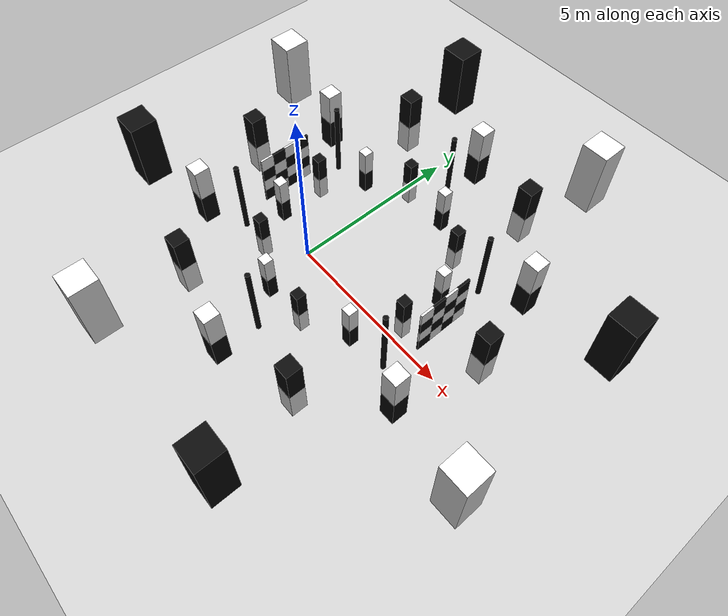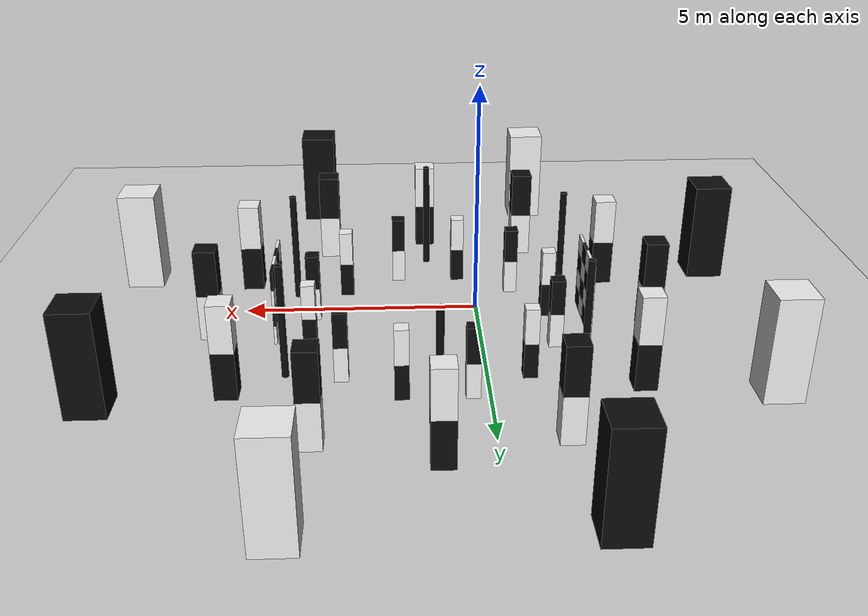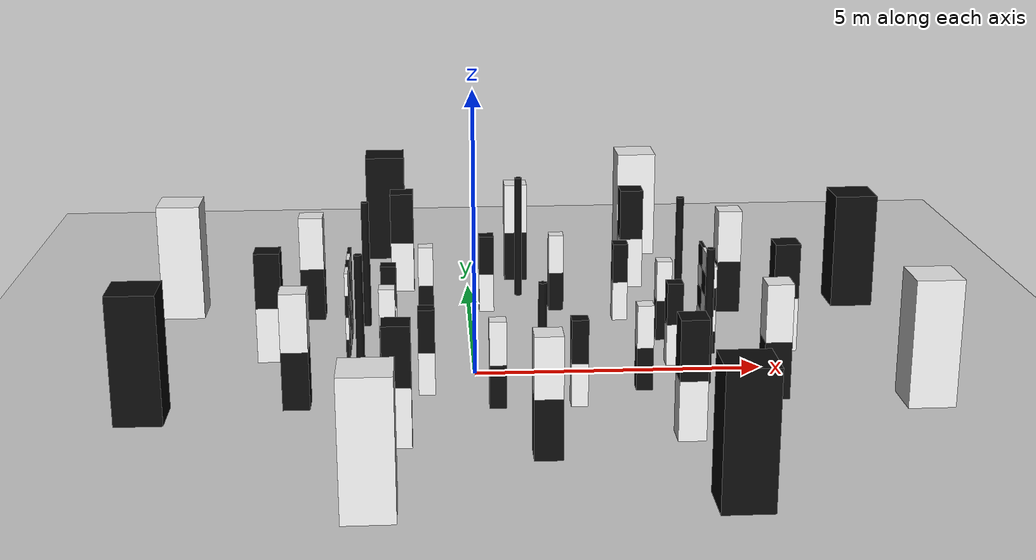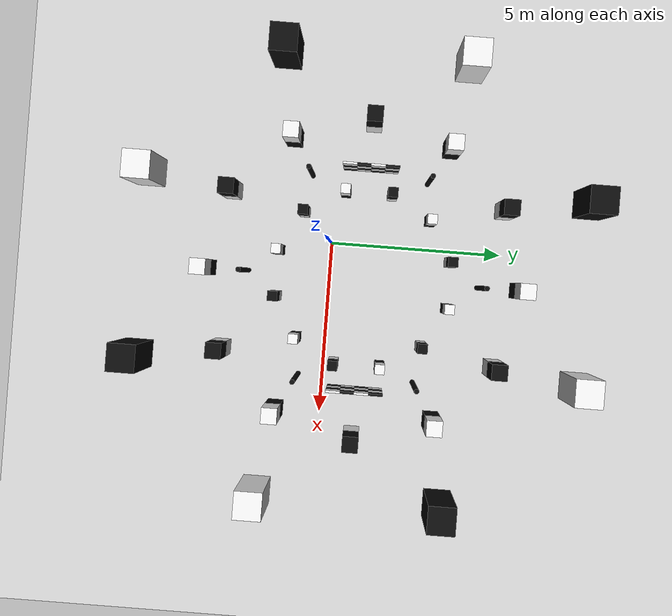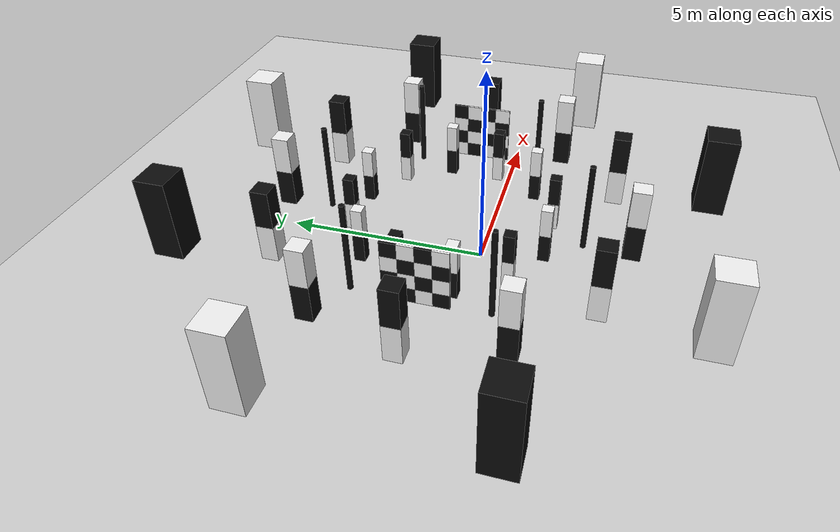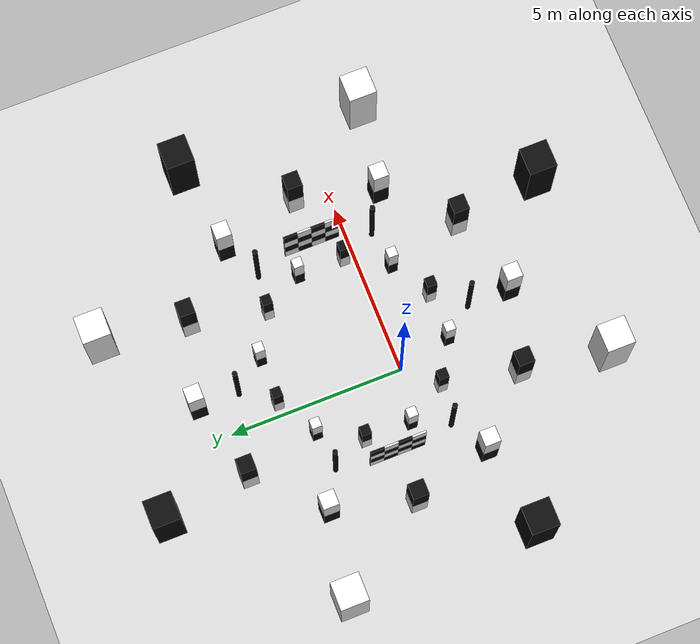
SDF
<?xml version="1.0" ?>
<sdf version="1.5">
  <world name="default">
    <!-- A global light source -->
    <include>
      <uri>model://sun</uri>
    </include>
    <!-- A ground plane -->
    <include>
      <uri>model://ground_plane</uri>
    </include>
    <include>
      <uri>model://asphalt_plane</uri>
    </include>
    <physics name='default_physics' default='0' type='ode'>
      <gravity>0 0 -9.8066</gravity>
      <ode>
        <solver>
          <type>quick</type>
          <iters>10</iters>
          <sor>1.3</sor>
          <use_dynamic_moi_rescaling>0</use_dynamic_moi_rescaling>
        </solver>
        <constraints>
          <cfm>0</cfm>
          <erp>0.2</erp>
          <contact_max_correcting_vel>100</contact_max_correcting_vel>
          <contact_surface_layer>0.001</contact_surface_layer>
        </constraints>
      </ode>
      <max_step_size>0.004</max_step_size>
      <real_time_factor>1</real_time_factor>
      <real_time_update_rate>250</real_time_update_rate>
      <magnetic_field>6.0e-6 2.3e-5 -4.2e-5</magnetic_field>
    </physics>
      <model name='wallA_00'>
      <static>true</static>
      <pose>4.200 0.400 0.400 0 0 0</pose>
      <link name='link'>
        <visual name='v'>
          <geometry><box><size>0.060 0.400 0.400</size></box></geometry>
        <material>
          <ambient>0.04 0.04 0.04 1</ambient>
          <diffuse>0.04 0.04 0.04 1</diffuse>
          <specular>0.15 0.15 0.15 1</specular>
        </material>
        </visual>
      </link>
    </model>
    <model name='wallA_01'>
      <static>true</static>
      <pose>4.200 0.800 0.400 0 0 0</pose>
      <link name='link'>
        <visual name='v'>
          <geometry><box><size>0.060 0.400 0.400</size></box></geometry>
        <material>
          <ambient>0.93 0.93 0.93 1</ambient>
          <diffuse>0.93 0.93 0.93 1</diffuse>
          <specular>0.15 0.15 0.15 1</specular>
        </material>
        </visual>
      </link>
    </model>
    <model name='wallA_02'>
      <static>true</static>
      <pose>4.200 1.200 0.400 0 0 0</pose>
      <link name='link'>
        <visual name='v'>
          <geometry><box><size>0.060 0.400 0.400</size></box></geometry>
        <material>
          <ambient>0.04 0.04 0.04 1</ambient>
          <diffuse>0.04 0.04 0.04 1</diffuse>
          <specular>0.15 0.15 0.15 1</specular>
        </material>
        </visual>
      </link>
    </model>
    <model name='wallA_03'>
      <static>true</static>
      <pose>4.200 1.600 0.400 0 0 0</pose>
      <link name='link'>
        <visual name='v'>
          <geometry><box><size>0.060 0.400 0.400</size></box></geometry>
        <material>
          <ambient>0.93 0.93 0.93 1</ambient>
          <diffuse>0.93 0.93 0.93 1</diffuse>
          <specular>0.15 0.15 0.15 1</specular>
        </material>
        </visual>
      </link>
    </model>
    <model name='wallA_10'>
      <static>true</static>
      <pose>4.200 0.400 0.800 0 0 0</pose>
      <link name='link'>
        <visual name='v'>
          <geometry><box><size>0.060 0.400 0.400</size></box></geometry>
        <material>
          <ambient>0.93 0.93 0.93 1</ambient>
          <diffuse>0.93 0.93 0.93 1</diffuse>
          <specular>0.15 0.15 0.15 1</specular>
        </material>
        </visual>
      </link>
    </model>
    <model name='wallA_11'>
      <static>true</static>
      <pose>4.200 0.800 0.800 0 0 0</pose>
      <link name='link'>
        <visual name='v'>
          <geometry><box><size>0.060 0.400 0.400</size></box></geometry>
        <material>
          <ambient>0.04 0.04 0.04 1</ambient>
          <diffuse>0.04 0.04 0.04 1</diffuse>
          <specular>0.15 0.15 0.15 1</specular>
        </material>
        </visual>
      </link>
    </model>
    <model name='wallA_12'>
      <static>true</static>
      <pose>4.200 1.200 0.800 0 0 0</pose>
      <link name='link'>
        <visual name='v'>
          <geometry><box><size>0.060 0.400 0.400</size></box></geometry>
        <material>
          <ambient>0.93 0.93 0.93 1</ambient>
          <diffuse>0.93 0.93 0.93 1</diffuse>
          <specular>0.15 0.15 0.15 1</specular>
        </material>
        </visual>
      </link>
    </model>
    <model name='wallA_13'>
      <static>true</static>
      <pose>4.200 1.600 0.800 0 0 0</pose>
      <link name='link'>
        <visual name='v'>
          <geometry><box><size>0.060 0.400 0.400</size></box></geometry>
        <material>
          <ambient>0.04 0.04 0.04 1</ambient>
          <diffuse>0.04 0.04 0.04 1</diffuse>
          <specular>0.15 0.15 0.15 1</specular>
        </material>
        </visual>
      </link>
    </model>
    <model name='wallA_20'>
      <static>true</static>
      <pose>4.200 0.400 1.200 0 0 0</pose>
      <link name='link'>
        <visual name='v'>
          <geometry><box><size>0.060 0.400 0.400</size></box></geometry>
        <material>
          <ambient>0.04 0.04 0.04 1</ambient>
          <diffuse>0.04 0.04 0.04 1</diffuse>
          <specular>0.15 0.15 0.15 1</specular>
        </material>
        </visual>
      </link>
    </model>
    <model name='wallA_21'>
      <static>true</static>
      <pose>4.200 0.800 1.200 0 0 0</pose>
      <link name='link'>
        <visual name='v'>
          <geometry><box><size>0.060 0.400 0.400</size></box></geometry>
        <material>
          <ambient>0.93 0.93 0.93 1</ambient>
          <diffuse>0.93 0.93 0.93 1</diffuse>
          <specular>0.15 0.15 0.15 1</specular>
        </material>
        </visual>
      </link>
    </model>
    <model name='wallA_22'>
      <static>true</static>
      <pose>4.200 1.200 1.200 0 0 0</pose>
      <link name='link'>
        <visual name='v'>
          <geometry><box><size>0.060 0.400 0.400</size></box></geometry>
        <material>
          <ambient>0.04 0.04 0.04 1</ambient>
          <diffuse>0.04 0.04 0.04 1</diffuse>
          <specular>0.15 0.15 0.15 1</specular>
        </material>
        </visual>
      </link>
    </model>
    <model name='wallA_23'>
      <static>true</static>
      <pose>4.200 1.600 1.200 0 0 0</pose>
      <link name='link'>
        <visual name='v'>
          <geometry><box><size>0.060 0.400 0.400</size></box></geometry>
        <material>
          <ambient>0.93 0.93 0.93 1</ambient>
          <diffuse>0.93 0.93 0.93 1</diffuse>
          <specular>0.15 0.15 0.15 1</specular>
        </material>
        </visual>
      </link>
    </model>
    <model name='wallA_30'>
      <static>true</static>
      <pose>4.200 0.400 1.600 0 0 0</pose>
      <link name='link'>
        <visual name='v'>
          <geometry><box><size>0.060 0.400 0.400</size></box></geometry>
        <material>
          <ambient>0.93 0.93 0.93 1</ambient>
          <diffuse>0.93 0.93 0.93 1</diffuse>
          <specular>0.15 0.15 0.15 1</specular>
        </material>
        </visual>
      </link>
    </model>
    <model name='wallA_31'>
      <static>true</static>
      <pose>4.200 0.800 1.600 0 0 0</pose>
      <link name='link'>
        <visual name='v'>
          <geometry><box><size>0.060 0.400 0.400</size></box></geometry>
        <material>
          <ambient>0.04 0.04 0.04 1</ambient>
          <diffuse>0.04 0.04 0.04 1</diffuse>
          <specular>0.15 0.15 0.15 1</specular>
        </material>
        </visual>
      </link>
    </model>
    <model name='wallA_32'>
      <static>true</static>
      <pose>4.200 1.200 1.600 0 0 0</pose>
      <link name='link'>
        <visual name='v'>
          <geometry><box><size>0.060 0.400 0.400</size></box></geometry>
        <material>
          <ambient>0.93 0.93 0.93 1</ambient>
          <diffuse>0.93 0.93 0.93 1</diffuse>
          <specular>0.15 0.15 0.15 1</specular>
        </material>
        </visual>
      </link>
    </model>
    <model name='wallA_33'>
      <static>true</static>
      <pose>4.200 1.600 1.600 0 0 0</pose>
      <link name='link'>
        <visual name='v'>
          <geometry><box><size>0.060 0.400 0.400</size></box></geometry>
        <material>
          <ambient>0.04 0.04 0.04 1</ambient>
          <diffuse>0.04 0.04 0.04 1</diffuse>
          <specular>0.15 0.15 0.15 1</specular>
        </material>
        </visual>
      </link>
    </model>
    <model name='wallB_00'>
      <static>true</static>
      <pose>-2.200 0.400 0.400 0 0 0</pose>
      <link name='link'>
        <visual name='v'>
          <geometry><box><size>0.060 0.400 0.400</size></box></geometry>
        <material>
          <ambient>0.04 0.04 0.04 1</ambient>
          <diffuse>0.04 0.04 0.04 1</diffuse>
          <specular>0.15 0.15 0.15 1</specular>
        </material>
        </visual>
      </link>
    </model>
    <model name='wallB_01'>
      <static>true</static>
      <pose>-2.200 0.800 0.400 0 0 0</pose>
      <link name='link'>
        <visual name='v'>
          <geometry><box><size>0.060 0.400 0.400</size></box></geometry>
        <material>
          <ambient>0.93 0.93 0.93 1</ambient>
          <diffuse>0.93 0.93 0.93 1</diffuse>
          <specular>0.15 0.15 0.15 1</specular>
        </material>
        </visual>
      </link>
    </model>
    <model name='wallB_02'>
      <static>true</static>
      <pose>-2.200 1.200 0.400 0 0 0</pose>
      <link name='link'>
        <visual name='v'>
          <geometry><box><size>0.060 0.400 0.400</size></box></geometry>
        <material>
          <ambient>0.04 0.04 0.04 1</ambient>
          <diffuse>0.04 0.04 0.04 1</diffuse>
          <specular>0.15 0.15 0.15 1</specular>
        </material>
        </visual>
      </link>
    </model>
    <model name='wallB_03'>
      <static>true</static>
      <pose>-2.200 1.600 0.400 0 0 0</pose>
      <link name='link'>
        <visual name='v'>
          <geometry><box><size>0.060 0.400 0.400</size></box></geometry>
        <material>
          <ambient>0.93 0.93 0.93 1</ambient>
          <diffuse>0.93 0.93 0.93 1</diffuse>
          <specular>0.15 0.15 0.15 1</specular>
        </material>
        </visual>
      </link>
    </model>
    <model name='wallB_10'>
      <static>true</static>
      <pose>-2.200 0.400 0.800 0 0 0</pose>
      <link name='link'>
        <visual name='v'>
          <geometry><box><size>0.060 0.400 0.400</size></box></geometry>
        <material>
          <ambient>0.93 0.93 0.93 1</ambient>
          <diffuse>0.93 0.93 0.93 1</diffuse>
          <specular>0.15 0.15 0.15 1</specular>
        </material>
        </visual>
      </link>
    </model>
    <model name='wallB_11'>
      <static>true</static>
      <pose>-2.200 0.800 0.800 0 0 0</pose>
      <link name='link'>
        <visual name='v'>
          <geometry><box><size>0.060 0.400 0.400</size></box></geometry>
        <material>
          <ambient>0.04 0.04 0.04 1</ambient>
          <diffuse>0.04 0.04 0.04 1</diffuse>
          <specular>0.15 0.15 0.15 1</specular>
        </material>
        </visual>
      </link>
    </model>
    <model name='wallB_12'>
      <static>true</static>
      <pose>-2.200 1.200 0.800 0 0 0</pose>
      <link name='link'>
        <visual name='v'>
          <geometry><box><size>0.060 0.400 0.400</size></box></geometry>
        <material>
          <ambient>0.93 0.93 0.93 1</ambient>
          <diffuse>0.93 0.93 0.93 1</diffuse>
          <specular>0.15 0.15 0.15 1</specular>
        </material>
        </visual>
      </link>
    </model>
    <model name='wallB_13'>
      <static>true</static>
      <pose>-2.200 1.600 0.800 0 0 0</pose>
      <link name='link'>
        <visual name='v'>
          <geometry><box><size>0.060 0.400 0.400</size></box></geometry>
        <material>
          <ambient>0.04 0.04 0.04 1</ambient>
          <diffuse>0.04 0.04 0.04 1</diffuse>
          <specular>0.15 0.15 0.15 1</specular>
        </material>
        </visual>
      </link>
    </model>
    <model name='wallB_20'>
      <static>true</static>
      <pose>-2.200 0.400 1.200 0 0 0</pose>
      <link name='link'>
        <visual name='v'>
          <geometry><box><size>0.060 0.400 0.400</size></box></geometry>
        <material>
          <ambient>0.04 0.04 0.04 1</ambient>
          <diffuse>0.04 0.04 0.04 1</diffuse>
          <specular>0.15 0.15 0.15 1</specular>
        </material>
        </visual>
      </link>
    </model>
    <model name='wallB_21'>
      <static>true</static>
      <pose>-2.200 0.800 1.200 0 0 0</pose>
      <link name='link'>
        <visual name='v'>
          <geometry><box><size>0.060 0.400 0.400</size></box></geometry>
        <material>
          <ambient>0.93 0.93 0.93 1</ambient>
          <diffuse>0.93 0.93 0.93 1</diffuse>
          <specular>0.15 0.15 0.15 1</specular>
        </material>
        </visual>
      </link>
    </model>
    <model name='wallB_22'>
      <static>true</static>
      <pose>-2.200 1.200 1.200 0 0 0</pose>
      <link name='link'>
        <visual name='v'>
          <geometry><box><size>0.060 0.400 0.400</size></box></geometry>
        <material>
          <ambient>0.04 0.04 0.04 1</ambient>
          <diffuse>0.04 0.04 0.04 1</diffuse>
          <specular>0.15 0.15 0.15 1</specular>
        </material>
        </visual>
      </link>
    </model>
    <model name='wallB_23'>
      <static>true</static>
      <pose>-2.200 1.600 1.200 0 0 0</pose>
      <link name='link'>
        <visual name='v'>
          <geometry><box><size>0.060 0.400 0.400</size></box></geometry>
        <material>
          <ambient>0.93 0.93 0.93 1</ambient>
          <diffuse>0.93 0.93 0.93 1</diffuse>
          <specular>0.15 0.15 0.15 1</specular>
        </material>
        </visual>
      </link>
    </model>
    <model name='wallB_30'>
      <static>true</static>
      <pose>-2.200 0.400 1.600 0 0 0</pose>
      <link name='link'>
        <visual name='v'>
          <geometry><box><size>0.060 0.400 0.400</size></box></geometry>
        <material>
          <ambient>0.93 0.93 0.93 1</ambient>
          <diffuse>0.93 0.93 0.93 1</diffuse>
          <specular>0.15 0.15 0.15 1</specular>
        </material>
        </visual>
      </link>
    </model>
    <model name='wallB_31'>
      <static>true</static>
      <pose>-2.200 0.800 1.600 0 0 0</pose>
      <link name='link'>
        <visual name='v'>
          <geometry><box><size>0.060 0.400 0.400</size></box></geometry>
        <material>
          <ambient>0.04 0.04 0.04 1</ambient>
          <diffuse>0.04 0.04 0.04 1</diffuse>
          <specular>0.15 0.15 0.15 1</specular>
        </material>
        </visual>
      </link>
    </model>
    <model name='wallB_32'>
      <static>true</static>
      <pose>-2.200 1.200 1.600 0 0 0</pose>
      <link name='link'>
        <visual name='v'>
          <geometry><box><size>0.060 0.400 0.400</size></box></geometry>
        <material>
          <ambient>0.93 0.93 0.93 1</ambient>
          <diffuse>0.93 0.93 0.93 1</diffuse>
          <specular>0.15 0.15 0.15 1</specular>
        </material>
        </visual>
      </link>
    </model>
    <model name='wallB_33'>
      <static>true</static>
      <pose>-2.200 1.600 1.600 0 0 0</pose>
      <link name='link'>
        <visual name='v'>
          <geometry><box><size>0.060 0.400 0.400</size></box></geometry>
        <material>
          <ambient>0.04 0.04 0.04 1</ambient>
          <diffuse>0.04 0.04 0.04 1</diffuse>
          <specular>0.15 0.15 0.15 1</specular>
        </material>
        </visual>
      </link>
    </model>
    <model name='r1_0_lo'>
      <static>true</static>
      <pose>3.511 1.673 0.375 0 0 0</pose>
      <link name='link'>
        <visual name='v'>
          <geometry><box><size>0.280 0.280 0.750</size></box></geometry>
        <material>
          <ambient>0.04 0.04 0.04 1</ambient>
          <diffuse>0.04 0.04 0.04 1</diffuse>
          <specular>0.15 0.15 0.15 1</specular>
        </material>
        </visual>
      </link>
    </model>
    <model name='r1_0_hi'>
      <static>true</static>
      <pose>3.511 1.673 1.125 0 0 0</pose>
      <link name='link'>
        <visual name='v'>
          <geometry><box><size>0.280 0.280 0.750</size></box></geometry>
        <material>
          <ambient>0.93 0.93 0.93 1</ambient>
          <diffuse>0.93 0.93 0.93 1</diffuse>
          <specular>0.15 0.15 0.15 1</specular>
        </material>
        </visual>
      </link>
    </model>
    <model name='r1_1_lo'>
      <static>true</static>
      <pose>2.838 2.838 0.375 0 0 0</pose>
      <link name='link'>
        <visual name='v'>
          <geometry><box><size>0.280 0.280 0.750</size></box></geometry>
        <material>
          <ambient>0.93 0.93 0.93 1</ambient>
          <diffuse>0.93 0.93 0.93 1</diffuse>
          <specular>0.15 0.15 0.15 1</specular>
        </material>
        </visual>
      </link>
    </model>
    <model name='r1_1_hi'>
      <static>true</static>
      <pose>2.838 2.838 1.125 0 0 0</pose>
      <link name='link'>
        <visual name='v'>
          <geometry><box><size>0.280 0.280 0.750</size></box></geometry>
        <material>
          <ambient>0.04 0.04 0.04 1</ambient>
          <diffuse>0.04 0.04 0.04 1</diffuse>
          <specular>0.15 0.15 0.15 1</specular>
        </material>
        </visual>
      </link>
    </model>
    <model name='r1_2_lo'>
      <static>true</static>
      <pose>1.673 3.511 0.375 0 0 0</pose>
      <link name='link'>
        <visual name='v'>
          <geometry><box><size>0.280 0.280 0.750</size></box></geometry>
        <material>
          <ambient>0.04 0.04 0.04 1</ambient>
          <diffuse>0.04 0.04 0.04 1</diffuse>
          <specular>0.15 0.15 0.15 1</specular>
        </material>
        </visual>
      </link>
    </model>
    <model name='r1_2_hi'>
      <static>true</static>
      <pose>1.673 3.511 1.125 0 0 0</pose>
      <link name='link'>
        <visual name='v'>
          <geometry><box><size>0.280 0.280 0.750</size></box></geometry>
        <material>
          <ambient>0.93 0.93 0.93 1</ambient>
          <diffuse>0.93 0.93 0.93 1</diffuse>
          <specular>0.15 0.15 0.15 1</specular>
        </material>
        </visual>
      </link>
    </model>
    <model name='r1_3_lo'>
      <static>true</static>
      <pose>0.327 3.511 0.375 0 0 0</pose>
      <link name='link'>
        <visual name='v'>
          <geometry><box><size>0.280 0.280 0.750</size></box></geometry>
        <material>
          <ambient>0.93 0.93 0.93 1</ambient>
          <diffuse>0.93 0.93 0.93 1</diffuse>
          <specular>0.15 0.15 0.15 1</specular>
        </material>
        </visual>
      </link>
    </model>
    <model name='r1_3_hi'>
      <static>true</static>
      <pose>0.327 3.511 1.125 0 0 0</pose>
      <link name='link'>
        <visual name='v'>
          <geometry><box><size>0.280 0.280 0.750</size></box></geometry>
        <material>
          <ambient>0.04 0.04 0.04 1</ambient>
          <diffuse>0.04 0.04 0.04 1</diffuse>
          <specular>0.15 0.15 0.15 1</specular>
        </material>
        </visual>
      </link>
    </model>
    <model name='r1_4_lo'>
      <static>true</static>
      <pose>-0.838 2.838 0.375 0 0 0</pose>
      <link name='link'>
        <visual name='v'>
          <geometry><box><size>0.280 0.280 0.750</size></box></geometry>
        <material>
          <ambient>0.04 0.04 0.04 1</ambient>
          <diffuse>0.04 0.04 0.04 1</diffuse>
          <specular>0.15 0.15 0.15 1</specular>
        </material>
        </visual>
      </link>
    </model>
    <model name='r1_4_hi'>
      <static>true</static>
      <pose>-0.838 2.838 1.125 0 0 0</pose>
      <link name='link'>
        <visual name='v'>
          <geometry><box><size>0.280 0.280 0.750</size></box></geometry>
        <material>
          <ambient>0.93 0.93 0.93 1</ambient>
          <diffuse>0.93 0.93 0.93 1</diffuse>
          <specular>0.15 0.15 0.15 1</specular>
        </material>
        </visual>
      </link>
    </model>
    <model name='r1_5_lo'>
      <static>true</static>
      <pose>-1.511 1.673 0.375 0 0 0</pose>
      <link name='link'>
        <visual name='v'>
          <geometry><box><size>0.280 0.280 0.750</size></box></geometry>
        <material>
          <ambient>0.93 0.93 0.93 1</ambient>
          <diffuse>0.93 0.93 0.93 1</diffuse>
          <specular>0.15 0.15 0.15 1</specular>
        </material>
        </visual>
      </link>
    </model>
    <model name='r1_5_hi'>
      <static>true</static>
      <pose>-1.511 1.673 1.125 0 0 0</pose>
      <link name='link'>
        <visual name='v'>
          <geometry><box><size>0.280 0.280 0.750</size></box></geometry>
        <material>
          <ambient>0.04 0.04 0.04 1</ambient>
          <diffuse>0.04 0.04 0.04 1</diffuse>
          <specular>0.15 0.15 0.15 1</specular>
        </material>
        </visual>
      </link>
    </model>
    <model name='r1_6_lo'>
      <static>true</static>
      <pose>-1.511 0.327 0.375 0 0 0</pose>
      <link name='link'>
        <visual name='v'>
          <geometry><box><size>0.280 0.280 0.750</size></box></geometry>
        <material>
          <ambient>0.04 0.04 0.04 1</ambient>
          <diffuse>0.04 0.04 0.04 1</diffuse>
          <specular>0.15 0.15 0.15 1</specular>
        </material>
        </visual>
      </link>
    </model>
    <model name='r1_6_hi'>
      <static>true</static>
      <pose>-1.511 0.327 1.125 0 0 0</pose>
      <link name='link'>
        <visual name='v'>
          <geometry><box><size>0.280 0.280 0.750</size></box></geometry>
        <material>
          <ambient>0.93 0.93 0.93 1</ambient>
          <diffuse>0.93 0.93 0.93 1</diffuse>
          <specular>0.15 0.15 0.15 1</specular>
        </material>
        </visual>
      </link>
    </model>
    <model name='r1_7_lo'>
      <static>true</static>
      <pose>-0.838 -0.838 0.375 0 0 0</pose>
      <link name='link'>
        <visual name='v'>
          <geometry><box><size>0.280 0.280 0.750</size></box></geometry>
        <material>
          <ambient>0.93 0.93 0.93 1</ambient>
          <diffuse>0.93 0.93 0.93 1</diffuse>
          <specular>0.15 0.15 0.15 1</specular>
        </material>
        </visual>
      </link>
    </model>
    <model name='r1_7_hi'>
      <static>true</static>
      <pose>-0.838 -0.838 1.125 0 0 0</pose>
      <link name='link'>
        <visual name='v'>
          <geometry><box><size>0.280 0.280 0.750</size></box></geometry>
        <material>
          <ambient>0.04 0.04 0.04 1</ambient>
          <diffuse>0.04 0.04 0.04 1</diffuse>
          <specular>0.15 0.15 0.15 1</specular>
        </material>
        </visual>
      </link>
    </model>
    <model name='r1_8_lo'>
      <static>true</static>
      <pose>0.327 -1.511 0.375 0 0 0</pose>
      <link name='link'>
        <visual name='v'>
          <geometry><box><size>0.280 0.280 0.750</size></box></geometry>
        <material>
          <ambient>0.04 0.04 0.04 1</ambient>
          <diffuse>0.04 0.04 0.04 1</diffuse>
          <specular>0.15 0.15 0.15 1</specular>
        </material>
        </visual>
      </link>
    </model>
    <model name='r1_8_hi'>
      <static>true</static>
      <pose>0.327 -1.511 1.125 0 0 0</pose>
      <link name='link'>
        <visual name='v'>
          <geometry><box><size>0.280 0.280 0.750</size></box></geometry>
        <material>
          <ambient>0.93 0.93 0.93 1</ambient>
          <diffuse>0.93 0.93 0.93 1</diffuse>
          <specular>0.15 0.15 0.15 1</specular>
        </material>
        </visual>
      </link>
    </model>
    <model name='r1_9_lo'>
      <static>true</static>
      <pose>1.673 -1.511 0.375 0 0 0</pose>
      <link name='link'>
        <visual name='v'>
          <geometry><box><size>0.280 0.280 0.750</size></box></geometry>
        <material>
          <ambient>0.93 0.93 0.93 1</ambient>
          <diffuse>0.93 0.93 0.93 1</diffuse>
          <specular>0.15 0.15 0.15 1</specular>
        </material>
        </visual>
      </link>
    </model>
    <model name='r1_9_hi'>
      <static>true</static>
      <pose>1.673 -1.511 1.125 0 0 0</pose>
      <link name='link'>
        <visual name='v'>
          <geometry><box><size>0.280 0.280 0.750</size></box></geometry>
        <material>
          <ambient>0.04 0.04 0.04 1</ambient>
          <diffuse>0.04 0.04 0.04 1</diffuse>
          <specular>0.15 0.15 0.15 1</specular>
        </material>
        </visual>
      </link>
    </model>
    <model name='r1_10_lo'>
      <static>true</static>
      <pose>2.838 -0.838 0.375 0 0 0</pose>
      <link name='link'>
        <visual name='v'>
          <geometry><box><size>0.280 0.280 0.750</size></box></geometry>
        <material>
          <ambient>0.04 0.04 0.04 1</ambient>
          <diffuse>0.04 0.04 0.04 1</diffuse>
          <specular>0.15 0.15 0.15 1</specular>
        </material>
        </visual>
      </link>
    </model>
    <model name='r1_10_hi'>
      <static>true</static>
      <pose>2.838 -0.838 1.125 0 0 0</pose>
      <link name='link'>
        <visual name='v'>
          <geometry><box><size>0.280 0.280 0.750</size></box></geometry>
        <material>
          <ambient>0.93 0.93 0.93 1</ambient>
          <diffuse>0.93 0.93 0.93 1</diffuse>
          <specular>0.15 0.15 0.15 1</specular>
        </material>
        </visual>
      </link>
    </model>
    <model name='r1_11_lo'>
      <static>true</static>
      <pose>3.511 0.327 0.375 0 0 0</pose>
      <link name='link'>
        <visual name='v'>
          <geometry><box><size>0.280 0.280 0.750</size></box></geometry>
        <material>
          <ambient>0.93 0.93 0.93 1</ambient>
          <diffuse>0.93 0.93 0.93 1</diffuse>
          <specular>0.15 0.15 0.15 1</specular>
        </material>
        </visual>
      </link>
    </model>
    <model name='r1_11_hi'>
      <static>true</static>
      <pose>3.511 0.327 1.125 0 0 0</pose>
      <link name='link'>
        <visual name='v'>
          <geometry><box><size>0.280 0.280 0.750</size></box></geometry>
        <material>
          <ambient>0.04 0.04 0.04 1</ambient>
          <diffuse>0.04 0.04 0.04 1</diffuse>
          <specular>0.15 0.15 0.15 1</specular>
        </material>
        </visual>
      </link>
    </model>
    <model name='r2_0_lo'>
      <static>true</static>
      <pose>5.600 1.000 0.500 0 0 0</pose>
      <link name='link'>
        <visual name='v'>
          <geometry><box><size>0.450 0.450 1.000</size></box></geometry>
        <material>
          <ambient>0.93 0.93 0.93 1</ambient>
          <diffuse>0.93 0.93 0.93 1</diffuse>
          <specular>0.15 0.15 0.15 1</specular>
        </material>
        </visual>
      </link>
    </model>
    <model name='r2_0_hi'>
      <static>true</static>
      <pose>5.600 1.000 1.500 0 0 0</pose>
      <link name='link'>
        <visual name='v'>
          <geometry><box><size>0.450 0.450 1.000</size></box></geometry>
        <material>
          <ambient>0.04 0.04 0.04 1</ambient>
          <diffuse>0.04 0.04 0.04 1</diffuse>
          <specular>0.15 0.15 0.15 1</specular>
        </material>
        </visual>
      </link>
    </model>
    <model name='r2_1_lo'>
      <static>true</static>
      <pose>4.984 3.300 0.500 0 0 0</pose>
      <link name='link'>
        <visual name='v'>
          <geometry><box><size>0.450 0.450 1.000</size></box></geometry>
        <material>
          <ambient>0.04 0.04 0.04 1</ambient>
          <diffuse>0.04 0.04 0.04 1</diffuse>
          <specular>0.15 0.15 0.15 1</specular>
        </material>
        </visual>
      </link>
    </model>
    <model name='r2_1_hi'>
      <static>true</static>
      <pose>4.984 3.300 1.500 0 0 0</pose>
      <link name='link'>
        <visual name='v'>
          <geometry><box><size>0.450 0.450 1.000</size></box></geometry>
        <material>
          <ambient>0.93 0.93 0.93 1</ambient>
          <diffuse>0.93 0.93 0.93 1</diffuse>
          <specular>0.15 0.15 0.15 1</specular>
        </material>
        </visual>
      </link>
    </model>
    <model name='r2_2_lo'>
      <static>true</static>
      <pose>3.300 4.984 0.500 0 0 0</pose>
      <link name='link'>
        <visual name='v'>
          <geometry><box><size>0.450 0.450 1.000</size></box></geometry>
        <material>
          <ambient>0.93 0.93 0.93 1</ambient>
          <diffuse>0.93 0.93 0.93 1</diffuse>
          <specular>0.15 0.15 0.15 1</specular>
        </material>
        </visual>
      </link>
    </model>
    <model name='r2_2_hi'>
      <static>true</static>
      <pose>3.300 4.984 1.500 0 0 0</pose>
      <link name='link'>
        <visual name='v'>
          <geometry><box><size>0.450 0.450 1.000</size></box></geometry>
        <material>
          <ambient>0.04 0.04 0.04 1</ambient>
          <diffuse>0.04 0.04 0.04 1</diffuse>
          <specular>0.15 0.15 0.15 1</specular>
        </material>
        </visual>
      </link>
    </model>
    <model name='r2_3_lo'>
      <static>true</static>
      <pose>1.000 5.600 0.500 0 0 0</pose>
      <link name='link'>
        <visual name='v'>
          <geometry><box><size>0.450 0.450 1.000</size></box></geometry>
        <material>
          <ambient>0.04 0.04 0.04 1</ambient>
          <diffuse>0.04 0.04 0.04 1</diffuse>
          <specular>0.15 0.15 0.15 1</specular>
        </material>
        </visual>
      </link>
    </model>
    <model name='r2_3_hi'>
      <static>true</static>
      <pose>1.000 5.600 1.500 0 0 0</pose>
      <link name='link'>
        <visual name='v'>
          <geometry><box><size>0.450 0.450 1.000</size></box></geometry>
        <material>
          <ambient>0.93 0.93 0.93 1</ambient>
          <diffuse>0.93 0.93 0.93 1</diffuse>
          <specular>0.15 0.15 0.15 1</specular>
        </material>
        </visual>
      </link>
    </model>
    <model name='r2_4_lo'>
      <static>true</static>
      <pose>-1.300 4.984 0.500 0 0 0</pose>
      <link name='link'>
        <visual name='v'>
          <geometry><box><size>0.450 0.450 1.000</size></box></geometry>
        <material>
          <ambient>0.93 0.93 0.93 1</ambient>
          <diffuse>0.93 0.93 0.93 1</diffuse>
          <specular>0.15 0.15 0.15 1</specular>
        </material>
        </visual>
      </link>
    </model>
    <model name='r2_4_hi'>
      <static>true</static>
      <pose>-1.300 4.984 1.500 0 0 0</pose>
      <link name='link'>
        <visual name='v'>
          <geometry><box><size>0.450 0.450 1.000</size></box></geometry>
        <material>
          <ambient>0.04 0.04 0.04 1</ambient>
          <diffuse>0.04 0.04 0.04 1</diffuse>
          <specular>0.15 0.15 0.15 1</specular>
        </material>
        </visual>
      </link>
    </model>
    <model name='r2_5_lo'>
      <static>true</static>
      <pose>-2.984 3.300 0.500 0 0 0</pose>
      <link name='link'>
        <visual name='v'>
          <geometry><box><size>0.450 0.450 1.000</size></box></geometry>
        <material>
          <ambient>0.04 0.04 0.04 1</ambient>
          <diffuse>0.04 0.04 0.04 1</diffuse>
          <specular>0.15 0.15 0.15 1</specular>
        </material>
        </visual>
      </link>
    </model>
    <model name='r2_5_hi'>
      <static>true</static>
      <pose>-2.984 3.300 1.500 0 0 0</pose>
      <link name='link'>
        <visual name='v'>
          <geometry><box><size>0.450 0.450 1.000</size></box></geometry>
        <material>
          <ambient>0.93 0.93 0.93 1</ambient>
          <diffuse>0.93 0.93 0.93 1</diffuse>
          <specular>0.15 0.15 0.15 1</specular>
        </material>
        </visual>
      </link>
    </model>
    <model name='r2_6_lo'>
      <static>true</static>
      <pose>-3.600 1.000 0.500 0 0 0</pose>
      <link name='link'>
        <visual name='v'>
          <geometry><box><size>0.450 0.450 1.000</size></box></geometry>
        <material>
          <ambient>0.93 0.93 0.93 1</ambient>
          <diffuse>0.93 0.93 0.93 1</diffuse>
          <specular>0.15 0.15 0.15 1</specular>
        </material>
        </visual>
      </link>
    </model>
    <model name='r2_6_hi'>
      <static>true</static>
      <pose>-3.600 1.000 1.500 0 0 0</pose>
      <link name='link'>
        <visual name='v'>
          <geometry><box><size>0.450 0.450 1.000</size></box></geometry>
        <material>
          <ambient>0.04 0.04 0.04 1</ambient>
          <diffuse>0.04 0.04 0.04 1</diffuse>
          <specular>0.15 0.15 0.15 1</specular>
        </material>
        </visual>
      </link>
    </model>
    <model name='r2_7_lo'>
      <static>true</static>
      <pose>-2.984 -1.300 0.500 0 0 0</pose>
      <link name='link'>
        <visual name='v'>
          <geometry><box><size>0.450 0.450 1.000</size></box></geometry>
        <material>
          <ambient>0.04 0.04 0.04 1</ambient>
          <diffuse>0.04 0.04 0.04 1</diffuse>
          <specular>0.15 0.15 0.15 1</specular>
        </material>
        </visual>
      </link>
    </model>
    <model name='r2_7_hi'>
      <static>true</static>
      <pose>-2.984 -1.300 1.500 0 0 0</pose>
      <link name='link'>
        <visual name='v'>
          <geometry><box><size>0.450 0.450 1.000</size></box></geometry>
        <material>
          <ambient>0.93 0.93 0.93 1</ambient>
          <diffuse>0.93 0.93 0.93 1</diffuse>
          <specular>0.15 0.15 0.15 1</specular>
        </material>
        </visual>
      </link>
    </model>
    <model name='r2_8_lo'>
      <static>true</static>
      <pose>-1.300 -2.984 0.500 0 0 0</pose>
      <link name='link'>
        <visual name='v'>
          <geometry><box><size>0.450 0.450 1.000</size></box></geometry>
        <material>
          <ambient>0.93 0.93 0.93 1</ambient>
          <diffuse>0.93 0.93 0.93 1</diffuse>
          <specular>0.15 0.15 0.15 1</specular>
        </material>
        </visual>
      </link>
    </model>
    <model name='r2_8_hi'>
      <static>true</static>
      <pose>-1.300 -2.984 1.500 0 0 0</pose>
      <link name='link'>
        <visual name='v'>
          <geometry><box><size>0.450 0.450 1.000</size></box></geometry>
        <material>
          <ambient>0.04 0.04 0.04 1</ambient>
          <diffuse>0.04 0.04 0.04 1</diffuse>
          <specular>0.15 0.15 0.15 1</specular>
        </material>
        </visual>
      </link>
    </model>
    <model name='r2_9_lo'>
      <static>true</static>
      <pose>1.000 -3.600 0.500 0 0 0</pose>
      <link name='link'>
        <visual name='v'>
          <geometry><box><size>0.450 0.450 1.000</size></box></geometry>
        <material>
          <ambient>0.04 0.04 0.04 1</ambient>
          <diffuse>0.04 0.04 0.04 1</diffuse>
          <specular>0.15 0.15 0.15 1</specular>
        </material>
        </visual>
      </link>
    </model>
    <model name='r2_9_hi'>
      <static>true</static>
      <pose>1.000 -3.600 1.500 0 0 0</pose>
      <link name='link'>
        <visual name='v'>
          <geometry><box><size>0.450 0.450 1.000</size></box></geometry>
        <material>
          <ambient>0.93 0.93 0.93 1</ambient>
          <diffuse>0.93 0.93 0.93 1</diffuse>
          <specular>0.15 0.15 0.15 1</specular>
        </material>
        </visual>
      </link>
    </model>
    <model name='r2_10_lo'>
      <static>true</static>
      <pose>3.300 -2.984 0.500 0 0 0</pose>
      <link name='link'>
        <visual name='v'>
          <geometry><box><size>0.450 0.450 1.000</size></box></geometry>
        <material>
          <ambient>0.93 0.93 0.93 1</ambient>
          <diffuse>0.93 0.93 0.93 1</diffuse>
          <specular>0.15 0.15 0.15 1</specular>
        </material>
        </visual>
      </link>
    </model>
    <model name='r2_10_hi'>
      <static>true</static>
      <pose>3.300 -2.984 1.500 0 0 0</pose>
      <link name='link'>
        <visual name='v'>
          <geometry><box><size>0.450 0.450 1.000</size></box></geometry>
        <material>
          <ambient>0.04 0.04 0.04 1</ambient>
          <diffuse>0.04 0.04 0.04 1</diffuse>
          <specular>0.15 0.15 0.15 1</specular>
        </material>
        </visual>
      </link>
    </model>
    <model name='r2_11_lo'>
      <static>true</static>
      <pose>4.984 -1.300 0.500 0 0 0</pose>
      <link name='link'>
        <visual name='v'>
          <geometry><box><size>0.450 0.450 1.000</size></box></geometry>
        <material>
          <ambient>0.04 0.04 0.04 1</ambient>
          <diffuse>0.04 0.04 0.04 1</diffuse>
          <specular>0.15 0.15 0.15 1</specular>
        </material>
        </visual>
      </link>
    </model>
    <model name='r2_11_hi'>
      <static>true</static>
      <pose>4.984 -1.300 1.500 0 0 0</pose>
      <link name='link'>
        <visual name='v'>
          <geometry><box><size>0.450 0.450 1.000</size></box></geometry>
        <material>
          <ambient>0.93 0.93 0.93 1</ambient>
          <diffuse>0.93 0.93 0.93 1</diffuse>
          <specular>0.15 0.15 0.15 1</specular>
        </material>
        </visual>
      </link>
    </model>
    <model name='r3_0'>
      <static>true</static>
      <pose>7.467 3.679 1.100 0 0 0</pose>
      <link name='link'>
        <visual name='v'>
          <geometry><box><size>0.800 0.800 2.200</size></box></geometry>
        <material>
          <ambient>0.04 0.04 0.04 1</ambient>
          <diffuse>0.04 0.04 0.04 1</diffuse>
          <specular>0.15 0.15 0.15 1</specular>
        </material>
        </visual>
      </link>
    </model>
    <model name='r3_1'>
      <static>true</static>
      <pose>3.679 7.467 1.100 0 0 0</pose>
      <link name='link'>
        <visual name='v'>
          <geometry><box><size>0.800 0.800 2.200</size></box></geometry>
        <material>
          <ambient>0.93 0.93 0.93 1</ambient>
          <diffuse>0.93 0.93 0.93 1</diffuse>
          <specular>0.15 0.15 0.15 1</specular>
        </material>
        </visual>
      </link>
    </model>
    <model name='r3_2'>
      <static>true</static>
      <pose>-1.679 7.467 1.100 0 0 0</pose>
      <link name='link'>
        <visual name='v'>
          <geometry><box><size>0.800 0.800 2.200</size></box></geometry>
        <material>
          <ambient>0.04 0.04 0.04 1</ambient>
          <diffuse>0.04 0.04 0.04 1</diffuse>
          <specular>0.15 0.15 0.15 1</specular>
        </material>
        </visual>
      </link>
    </model>
    <model name='r3_3'>
      <static>true</static>
      <pose>-5.467 3.679 1.100 0 0 0</pose>
      <link name='link'>
        <visual name='v'>
          <geometry><box><size>0.800 0.800 2.200</size></box></geometry>
        <material>
          <ambient>0.93 0.93 0.93 1</ambient>
          <diffuse>0.93 0.93 0.93 1</diffuse>
          <specular>0.15 0.15 0.15 1</specular>
        </material>
        </visual>
      </link>
    </model>
    <model name='r3_4'>
      <static>true</static>
      <pose>-5.467 -1.679 1.100 0 0 0</pose>
      <link name='link'>
        <visual name='v'>
          <geometry><box><size>0.800 0.800 2.200</size></box></geometry>
        <material>
          <ambient>0.04 0.04 0.04 1</ambient>
          <diffuse>0.04 0.04 0.04 1</diffuse>
          <specular>0.15 0.15 0.15 1</specular>
        </material>
        </visual>
      </link>
    </model>
    <model name='r3_5'>
      <static>true</static>
      <pose>-1.679 -5.467 1.100 0 0 0</pose>
      <link name='link'>
        <visual name='v'>
          <geometry><box><size>0.800 0.800 2.200</size></box></geometry>
        <material>
          <ambient>0.93 0.93 0.93 1</ambient>
          <diffuse>0.93 0.93 0.93 1</diffuse>
          <specular>0.15 0.15 0.15 1</specular>
        </material>
        </visual>
      </link>
    </model>
    <model name='r3_6'>
      <static>true</static>
      <pose>3.679 -5.467 1.100 0 0 0</pose>
      <link name='link'>
        <visual name='v'>
          <geometry><box><size>0.800 0.800 2.200</size></box></geometry>
        <material>
          <ambient>0.04 0.04 0.04 1</ambient>
          <diffuse>0.04 0.04 0.04 1</diffuse>
          <specular>0.15 0.15 0.15 1</specular>
        </material>
        </visual>
      </link>
    </model>
    <model name='r3_7'>
      <static>true</static>
      <pose>7.467 -1.679 1.100 0 0 0</pose>
      <link name='link'>
        <visual name='v'>
          <geometry><box><size>0.800 0.800 2.200</size></box></geometry>
        <material>
          <ambient>0.93 0.93 0.93 1</ambient>
          <diffuse>0.93 0.93 0.93 1</diffuse>
          <specular>0.15 0.15 0.15 1</specular>
        </material>
        </visual>
      </link>
    </model>
    <model name='pole_0'>
      <static>true</static>
      <pose>3.944 2.700 1.200 0 0 0</pose>
      <link name='link'>
        <visual name='v'>
          <geometry><cylinder><radius>0.070</radius><length>2.400</length></cylinder></geometry>
        <material>
          <ambient>0.04 0.04 0.04 1</ambient>
          <diffuse>0.04 0.04 0.04 1</diffuse>
          <specular>0.15 0.15 0.15 1</specular>
        </material>
        </visual>
      </link>
    </model>
    <model name='pole_1'>
      <static>true</static>
      <pose>1.000 4.400 1.200 0 0 0</pose>
      <link name='link'>
        <visual name='v'>
          <geometry><cylinder><radius>0.070</radius><length>2.400</length></cylinder></geometry>
        <material>
          <ambient>0.04 0.04 0.04 1</ambient>
          <diffuse>0.04 0.04 0.04 1</diffuse>
          <specular>0.15 0.15 0.15 1</specular>
        </material>
        </visual>
      </link>
    </model>
    <model name='pole_2'>
      <static>true</static>
      <pose>-1.944 2.700 1.200 0 0 0</pose>
      <link name='link'>
        <visual name='v'>
          <geometry><cylinder><radius>0.070</radius><length>2.400</length></cylinder></geometry>
        <material>
          <ambient>0.04 0.04 0.04 1</ambient>
          <diffuse>0.04 0.04 0.04 1</diffuse>
          <specular>0.15 0.15 0.15 1</specular>
        </material>
        </visual>
      </link>
    </model>
    <model name='pole_3'>
      <static>true</static>
      <pose>-1.944 -0.700 1.200 0 0 0</pose>
      <link name='link'>
        <visual name='v'>
          <geometry><cylinder><radius>0.070</radius><length>2.400</length></cylinder></geometry>
        <material>
          <ambient>0.04 0.04 0.04 1</ambient>
          <diffuse>0.04 0.04 0.04 1</diffuse>
          <specular>0.15 0.15 0.15 1</specular>
        </material>
        </visual>
      </link>
    </model>
    <model name='pole_4'>
      <static>true</static>
      <pose>1.000 -2.400 1.200 0 0 0</pose>
      <link name='link'>
        <visual name='v'>
          <geometry><cylinder><radius>0.070</radius><length>2.400</length></cylinder></geometry>
        <material>
          <ambient>0.04 0.04 0.04 1</ambient>
          <diffuse>0.04 0.04 0.04 1</diffuse>
          <specular>0.15 0.15 0.15 1</specular>
        </material>
        </visual>
      </link>
    </model>
    <model name='pole_5'>
      <static>true</static>
      <pose>3.944 -0.700 1.200 0 0 0</pose>
      <link name='link'>
        <visual name='v'>
          <geometry><cylinder><radius>0.070</radius><length>2.400</length></cylinder></geometry>
        <material>
          <ambient>0.04 0.04 0.04 1</ambient>
          <diffuse>0.04 0.04 0.04 1</diffuse>
          <specular>0.15 0.15 0.15 1</specular>
        </material>
        </visual>
      </link>
    </model>
  </world>
</sdf>
